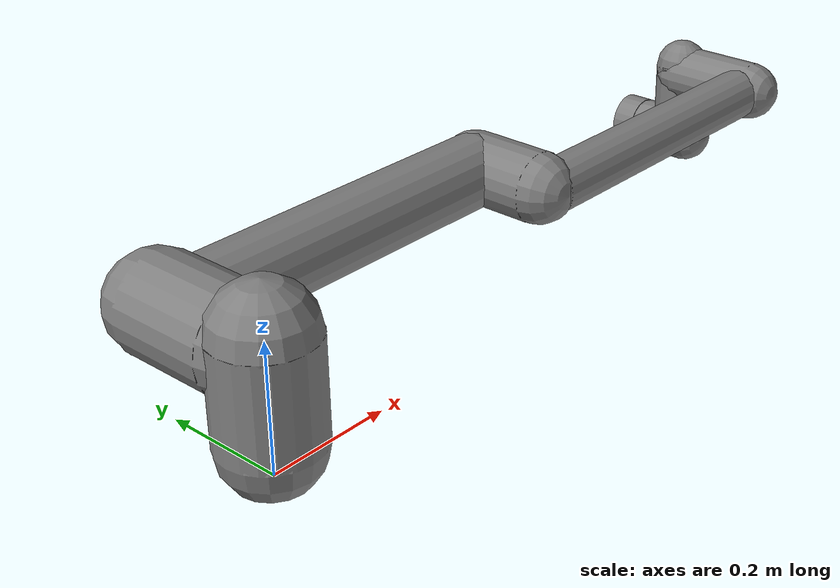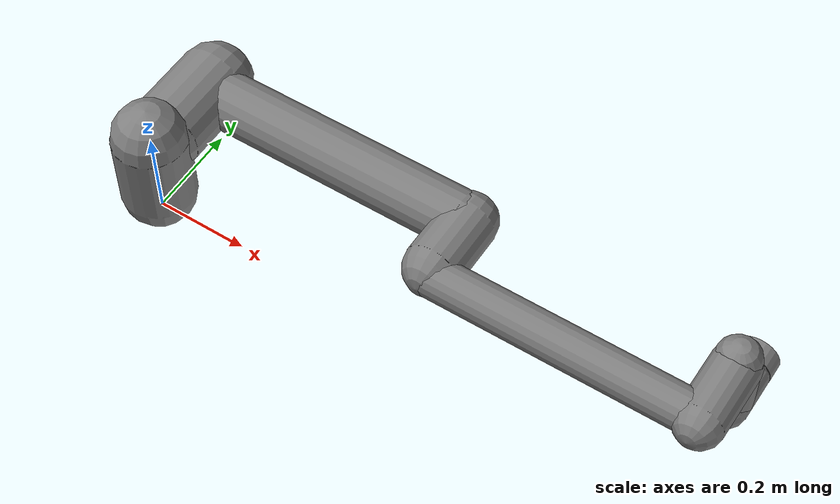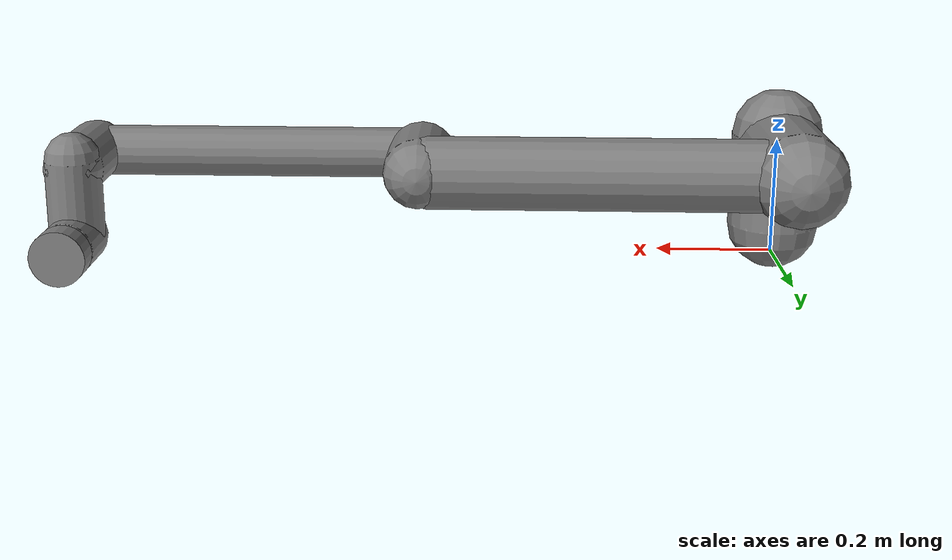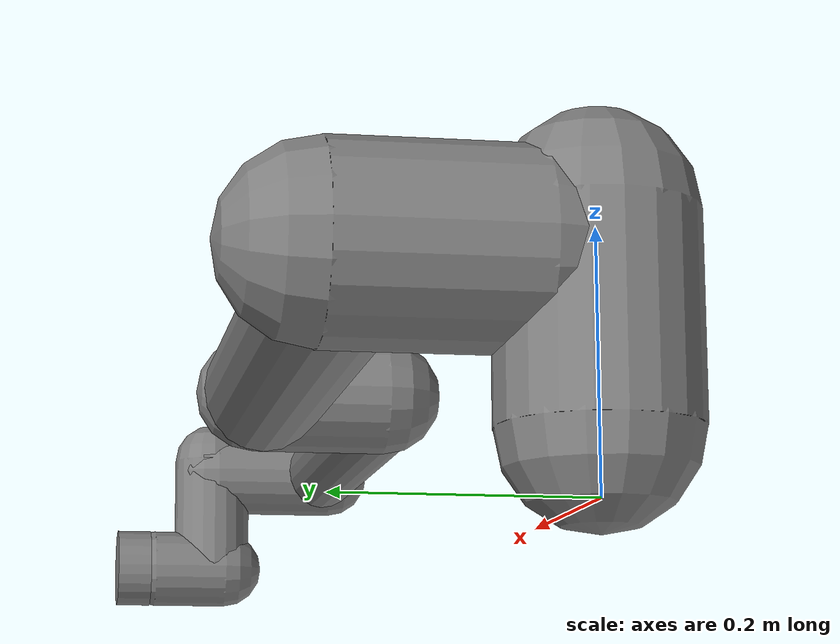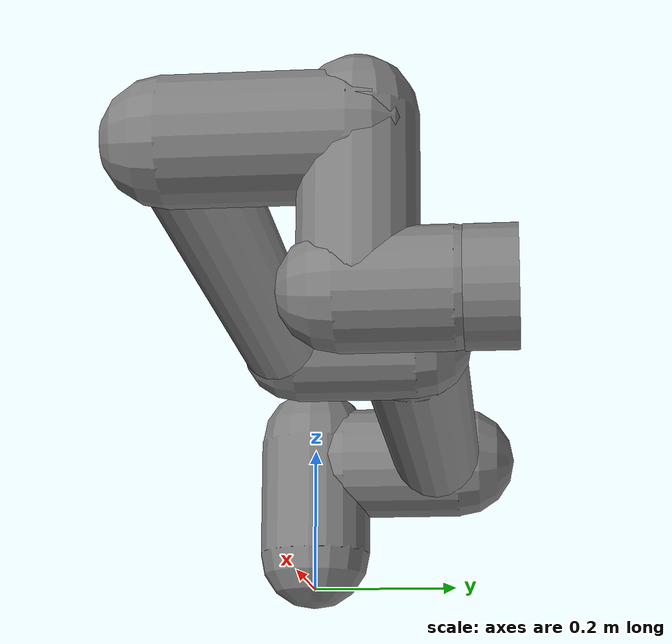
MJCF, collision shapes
<mujoco model="ur10e scene">
  <include file="ur10e.xml"/>

  <statistic center="0.4 0 0.4" extent="1"/>

  <asset>
    <texture type="skybox" builtin="flat" rgb1="1 1 1" rgb2="1 1 1" width="512" height="3072"/>
  </asset>

  <worldbody>
    <light diffuse="0 0 0" specular="0 0 0"/>
  </worldbody>
</mujoco>

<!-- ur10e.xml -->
<mujoco model="ur10e">
  <compiler angle="radian" meshdir="assets" autolimits="true"/>

  <option integrator="implicitfast"/>

  <default>
    <default class="ur10e">
      <material specular="0." shininess="0."/>
      <joint axis="0 1 0" range="-6.28319 6.28319" armature="0.1"/>
      <position ctrlrange="-6.2831 6.2831"/>
      <general biastype="affine" ctrlrange="-6.2831 6.2831" gainprm="5000" biasprm="0 -5000 -500"/>
      <default class="size4">
        <joint damping="10"/>
        <general forcerange="-330 330"/>
      </default>
      <default class="size3">
        <joint damping="5"/>
        <general forcerange="-150 150"/>
        <default class="size3_limited">
          <joint range="-3.1415 3.1415"/>
          <general ctrlrange="-3.1415 3.1415"/>
        </default>
      </default>
      <default class="size2">
        <joint damping="2"/>
        <general forcerange="-56 56"/>
      </default>
      <default class="visual">
        <geom type="mesh" contype="0" conaffinity="0" group="2"/>
      </default>
      <default class="collision">
        <geom type="capsule" group="3"/>
        <default class="eef_collision">
          <geom type="cylinder"/>
        </default>
      </default>
      </default>
  </default>

  <asset>
    <material class="ur10e" name="black" rgba="0 0 0 1"/>

    <mesh file="base_0.obj"/>
    <mesh file="base_1.obj"/>
    <mesh file="shoulder_0.obj"/>
    <mesh file="shoulder_1.obj"/>
    <mesh file="shoulder_2.obj"/>
    <mesh file="upperarm_0.obj"/>
    <mesh file="upperarm_1.obj"/>
    <mesh file="upperarm_2.obj"/>
    <mesh file="upperarm_3.obj"/>
    <mesh file="forearm_0.obj"/>
    <mesh file="forearm_1.obj"/>
    <mesh file="forearm_2.obj"/>
    <mesh file="forearm_3.obj"/>
    <mesh file="wrist1_0.obj"/>
    <mesh file="wrist1_1.obj"/>
    <mesh file="wrist1_2.obj"/>
    <mesh file="wrist2_0.obj"/>
    <mesh file="wrist2_1.obj"/>
    <mesh file="wrist2_2.obj"/>
    <mesh file="wrist3.obj"/>
  </asset>

  <worldbody>
    <!--background rgba="0 0 0 1"/-->
    <body name="base" quat="1 0 0 0" childclass="ur10e">
      <inertial mass="4.0" pos="0 0 0" diaginertia="0.0061063308908 0.0061063308908 0.01125"/>
      <geom mesh="base_0" material="black" class="visual"/>
      <geom mesh="base_1" material="black" class="visual"/>
      <body name="shoulder_link" pos="0 0 0.181">
        <inertial pos="0 0 0" mass="7.778" diaginertia="0.0314743 0.0314743 0.0218756"/>
        <joint name="shoulder_pan_joint" class="size4" axis="0 0 1"/>
        <geom mesh="shoulder_0" material="black" class="visual"/>
        <geom mesh="shoulder_1" material="black" class="visual"/>
        <geom mesh="shoulder_2" material="black" class="visual"/>
        <geom class="collision" size="0.078 0.08" pos="0 0 -0.05"/>
        <body name="upper_arm_link" pos="0 0.176 0" quat="1 0 1 0">
          <inertial pos="0 0 0.3065" mass="12.93" diaginertia="0.423074 0.423074 0.0363656"/>
          <joint name="shoulder_lift_joint" class="size4"/>
          <geom mesh="upperarm_0" material="black" class="visual"/>
          <geom mesh="upperarm_1" material="black" class="visual"/>
          <geom mesh="upperarm_2" material="black" class="visual"/>
          <geom mesh="upperarm_3" material="black" class="visual"/>
          <geom class="collision" pos="0 -0.05 0" quat="1 1 0 0" size="0.078 0.08"/>
          <geom class="collision" size="0.06 0.3" pos="0 0 0.3"/>
          <body name="forearm_link" pos="0 -0.137 0.613">
            <inertial pos="0 0 0.2855" mass="3.87" diaginertia="0.11059 0.11059 0.0108844"/>
            <joint name="elbow_joint" class="size3_limited"/>
            <geom mesh="forearm_0" material="black" class="visual"/>
            <geom mesh="forearm_1" material="black" class="visual"/>
            <geom mesh="forearm_2" material="black" class="visual"/>
            <geom mesh="forearm_3" material="black" class="visual"/>
            <geom class="collision" pos="0 0.08 0" quat="1 1 0 0" size="0.058 0.065"/>
            <geom class="collision" size="0.043 0.28" pos="0 0 0.29"/>
            <body name="wrist_1_link" pos="0 0 0.571" quat="1 0 1 0">
              <inertial pos="0 0.135 0" quat="0.5 0.5 -0.5 0.5" mass="1.96"
                diaginertia="0.0055125 0.00510825 0.00510825"/>
              <joint name="wrist_1_joint" class="size2"/>
              <geom mesh="wrist1_0" material="black" class="visual"/>
              <geom mesh="wrist1_1" material="black" class="visual"/>
              <geom mesh="wrist1_2" material="black" class="visual"/>
              <geom class="collision" pos="0 0.06 0" quat="1 1 0 0" size="0.05 0.07"/>
              <body name="wrist_2_link" pos="0 0.135 0">
                <inertial pos="0 0 0.12" quat="0.5 0.5 -0.5 0.5" mass="1.96"
                  diaginertia="0.0055125 0.00510825 0.00510825"/>
                <joint name="wrist_2_joint" axis="0 0 1" class="size2"/>
                <geom mesh="wrist2_0" material="black" class="visual"/>
                <geom mesh="wrist2_1" material="black" class="visual"/>
                <geom mesh="wrist2_2" material="black" class="visual"/>
                <geom class="collision" size="0.046 0.065" pos="0 0 0.05"/>
                <geom class="collision" pos="0 0.028 0.12" quat="1 1 0 0" size="0.046 0.043"/>
                <body name="wrist_3_link" pos="0 0 0.12">
                  <inertial pos="0 0.092 0" quat="0 1 -1 0" mass="0.202"
                    diaginertia="0.000204525 0.000144346 0.000144346"/>
                  <joint name="wrist_3_joint" class="size2"/>
                  <geom material="black" mesh="wrist3" class="visual"/>
                  <geom class="eef_collision" pos="0 0.097 0" quat="1 1 0 0" size="0.046 0.02"/>
                  <site name="attachment_site" pos="0 0.1 0" quat="-1 1 0 0"/>
                  <camera name="camera1" pos="0 0 0.1" euler="1.5708 0 0" fovy="90"/>
                  <camera name="camera2" pos="0 0 0.1" euler="-1.5708 0 3.1415" fovy="90"/>
                </body>
              </body>
            </body>
          </body>
        </body>
      </body>
    </body>
  </worldbody>

  <actuator>
    <general class="size4" name="shoulder_pan" joint="shoulder_pan_joint"/>
    <general class="size4" name="shoulder_lift" joint="shoulder_lift_joint"/>
    <general class="size3_limited" name="elbow" joint="elbow_joint"/>
    <general class="size2" name="wrist_1" joint="wrist_1_joint"/>
    <general class="size2" name="wrist_2" joint="wrist_2_joint"/>
    <general class="size2" name="wrist_3" joint="wrist_3_joint"/>
  </actuator>

  <keyframe>
    <key name="home" qpos="-1.5708 -1.5708 1.5708 -1.5708 -1.5708 0" ctrl="-1.5708 -1.5708 1.5708 -1.5708 -1.5708 0"/>
  </keyframe>

</mujoco>
